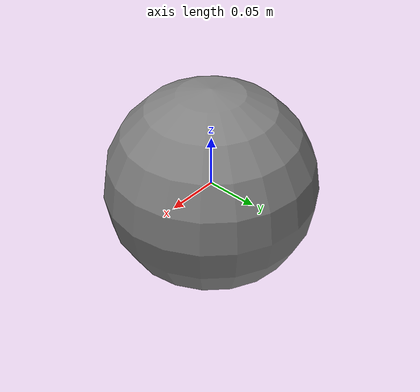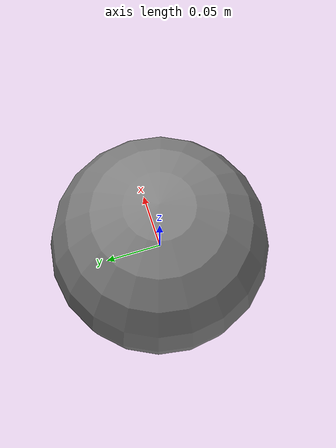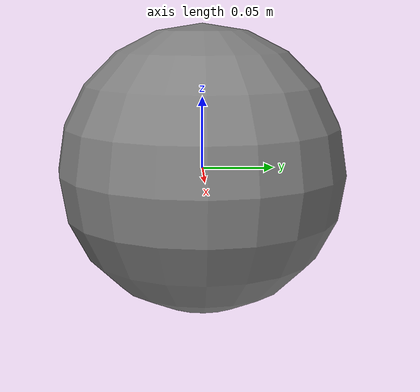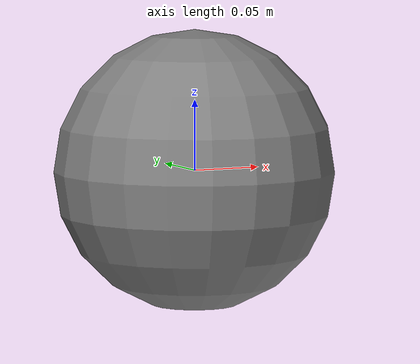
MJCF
<mujoco>
                <default>
                    <default class="sensor_site">
                        <site type="cylinder" size="0.02 0.01"/>
                    </default>
                </default>
                <worldbody>
                    <body name="b">
                        <geom type="sphere" size="0.1" mass="1.0"/>
                        <site name="s" class="sensor_site" euler="0 0 90"/>
                    </body>
                </worldbody>
            </mujoco>
